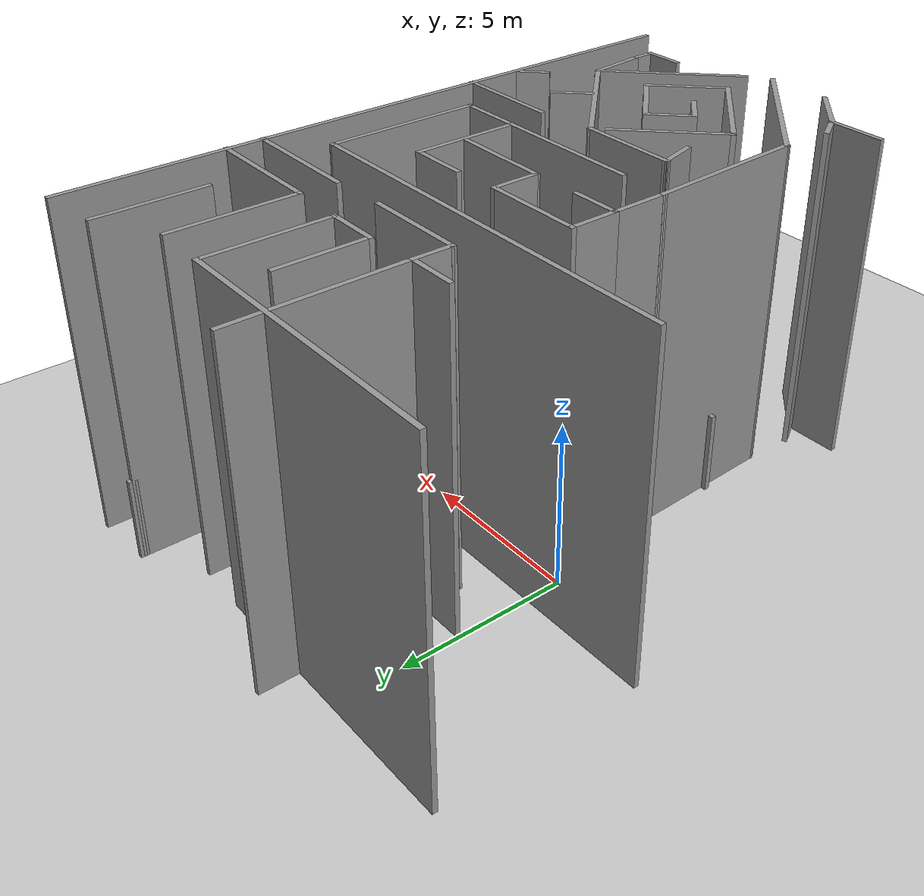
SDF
<sdf version="1.6">
 <world name="default">
  <include><uri>model://sun</uri></include>
  <model name="ground_plane">
   <static>1</static>
   <link name="link">
    <collision name="collision">
     <geometry><plane><normal>0 0 1</normal><size>100 100</size></plane></geometry>
     <surface>
      <contact><collide_bitmask>65535</collide_bitmask></contact>
      <friction><ode><mu>100</mu><mu2>50</mu2></ode></friction>
     </surface>
    </collision>
    <visual name="visual">
     <cast_shadows>0</cast_shadows>
     <geometry><plane><normal>0 0 1</normal><size>100 100</size></plane></geometry>
     <material>
      <script><uri>file://media/materials/scripts/gazebo.material</uri><name>Gazebo/Grey</name></script>
     </material>
    </visual>
   </link>
  </model>
  <model name="maze.world">
   <pose>-0.346394 -1.90508 0 0 -0 0</pose>
   <link name="Wall_130">
    <collision name="Wall_130_Collision">
     <geometry><box><size>1.25 0.15 10</size></box></geometry>
     <pose>0 0 5 0 -0 0</pose>
    </collision>
    <visual name="Wall_130_Visual">
     <pose>0 0 5 0 -0 0</pose>
     <geometry><box><size>1.25 0.15 10</size></box></geometry>
     <material>
      <script><uri>file://media/materials/scripts/gazebo.material</uri><name>Gazebo/Grey</name></script>
      <ambient>1 1 1 1</ambient>
     </material>
     <meta><layer>0</layer></meta>
    </visual>
    <pose>4.4255 -6.39102 0 0 -0 2.35619</pose>
   </link>
   <link name="Wall_131">
    <collision name="Wall_131_Collision">
     <geometry><box><size>1.5 0.15 10</size></box></geometry>
     <pose>0 0 5 0 -0 0</pose>
    </collision>
    <visual name="Wall_131_Visual">
     <pose>0 0 5 0 -0 0</pose>
     <geometry><box><size>1.5 0.15 10</size></box></geometry>
     <material>
      <script><uri>file://media/materials/scripts/gazebo.material</uri><name>Gazebo/Grey</name></script>
      <ambient>1 1 1 1</ambient>
     </material>
     <meta><layer>0</layer></meta>
    </visual>
    <pose>4.514 -5.52501 0 0 -0 0.784874</pose>
   </link>
   <link name="Wall_132">
    <collision name="Wall_132_Collision">
     <geometry><box><size>2.5 0.15 10</size></box></geometry>
     <pose>0 0 5 0 -0 0</pose>
    </collision>
    <visual name="Wall_132_Visual">
     <pose>0 0 5 0 -0 0</pose>
     <geometry><box><size>2.5 0.15 10</size></box></geometry>
     <material>
      <script><uri>file://media/materials/scripts/gazebo.material</uri><name>Gazebo/Grey</name></script>
      <ambient>1 1 1 1</ambient>
     </material>
     <meta><layer>0</layer></meta>
    </visual>
    <pose>5.8225 -5.87901 0 0 -0 -0.785398</pose>
   </link>
   <link name="Wall_133">
    <collision name="Wall_133_Collision">
     <geometry><box><size>2.5 0.15 10</size></box></geometry>
     <pose>0 0 5 0 -0 0</pose>
    </collision>
    <visual name="Wall_133_Visual">
     <pose>0 0 5 0 -0 0</pose>
     <geometry><box><size>2.5 0.15 10</size></box></geometry>
     <material>
      <script><uri>file://media/materials/scripts/gazebo.material</uri><name>Gazebo/Grey</name></script>
      <ambient>1 1 1 1</ambient>
     </material>
     <meta><layer>0</layer></meta>
    </visual>
    <pose>5.8225 -7.54052 0 0 -0 -2.35649</pose>
   </link>
   <link name="Wall_134">
    <collision name="Wall_134_Collision">
     <geometry><box><size>3.75 0.15 10</size></box></geometry>
     <pose>0 0 5 0 -0 0</pose>
    </collision>
    <visual name="Wall_134_Visual">
     <pose>0 0 5 0 -0 0</pose>
     <geometry><box><size>3.75 0.15 10</size></box></geometry>
     <material>
      <script><uri>file://media/materials/scripts/gazebo.material</uri><name>Gazebo/Grey</name></script>
      <ambient>1 1 1 1</ambient>
     </material>
     <meta><layer>0</layer></meta>
    </visual>
    <pose>3.7185 -7.09852 0 0 -0 2.35639</pose>
   </link>
   <link name="Wall_135">
    <collision name="Wall_135_Collision">
     <geometry><box><size>3.5 0.15 10</size></box></geometry>
     <pose>0 0 5 0 -0 0</pose>
    </collision>
    <visual name="Wall_135_Visual">
     <pose>0 0 5 0 -0 0</pose>
     <geometry><box><size>3.5 0.15 10</size></box></geometry>
     <material>
      <script><uri>file://media/materials/scripts/gazebo.material</uri><name>Gazebo/Grey</name></script>
      <ambient>1 1 1 1</ambient>
     </material>
     <meta><layer>0</layer></meta>
    </visual>
    <pose>3.63 -4.64152 0 0 -0 0.785398</pose>
   </link>
   <link name="Wall_136">
    <collision name="Wall_136_Collision">
     <geometry><box><size>0.15 0.15 2.5</size></box></geometry>
     <pose>0 0 1.25 0 -0 0</pose>
    </collision>
    <visual name="Wall_136_Visual">
     <pose>0 0 1.25 0 -0 0</pose>
     <geometry><box><size>0.15 0.15 2.5</size></box></geometry>
     <material>
      <script><uri>file://media/materials/scripts/gazebo.material</uri><name>Gazebo/Grey</name></script>
      <ambient>1 1 1 1</ambient>
     </material>
     <meta><layer>0</layer></meta>
    </visual>
    <pose>4.8145 -3.45702 0 0 -0 0</pose>
   </link>
   <link name="Wall_137">
    <collision name="Wall_137_Collision">
     <geometry><box><size>0.15 0.15 2.5</size></box></geometry>
     <pose>0 0 1.25 0 -0 0</pose>
    </collision>
    <visual name="Wall_137_Visual">
     <pose>0 0 1.25 0 -0 0</pose>
     <geometry><box><size>0.15 0.15 2.5</size></box></geometry>
     <material>
      <script><uri>file://media/materials/scripts/gazebo.material</uri><name>Gazebo/Grey</name></script>
      <ambient>1 1 1 1</ambient>
     </material>
     <meta><layer>0</layer></meta>
    </visual>
    <pose>4.8145 -3.45702 0 0 -0 0</pose>
   </link>
   <link name="Wall_138">
    <collision name="Wall_138_Collision">
     <geometry><box><size>0.25 0.15 2.5</size></box></geometry>
     <pose>0 0 1.25 0 -0 0</pose>
    </collision>
    <visual name="Wall_138_Visual">
     <pose>0 0 1.25 0 -0 0</pose>
     <geometry><box><size>0.25 0.15 2.5</size></box></geometry>
     <material>
      <script><uri>file://media/materials/scripts/gazebo.material</uri><name>Gazebo/Grey</name></script>
      <ambient>1 1 1 1</ambient>
     </material>
     <meta><layer>0</layer></meta>
    </visual>
    <pose>4.85001 -3.42161 0 0 -0 0.784014</pose>
   </link>
   <link name="Wall_139">
    <collision name="Wall_139_Collision">
     <geometry><box><size>0.5 0.15 2.5</size></box></geometry>
     <pose>0 0 1.25 0 -0 0</pose>
    </collision>
    <visual name="Wall_139_Visual">
     <pose>0 0 1.25 0 -0 0</pose>
     <geometry><box><size>0.5 0.15 2.5</size></box></geometry>
     <material>
      <script><uri>file://media/materials/scripts/gazebo.material</uri><name>Gazebo/Grey</name></script>
      <ambient>1 1 1 1</ambient>
     </material>
     <meta><layer>0</layer></meta>
    </visual>
    <pose>5.00951 -3.26261 0 0 -0 0.783775</pose>
   </link>
   <link name="Wall_140">
    <collision name="Wall_140_Collision">
     <geometry><box><size>4.75 0.15 10</size></box></geometry>
     <pose>0 0 5 0 -0 0</pose>
    </collision>
    <visual name="Wall_140_Visual">
     <pose>0 0 5 0 -0 0</pose>
     <geometry><box><size>4.75 0.15 10</size></box></geometry>
     <material>
      <script><uri>file://media/materials/scripts/gazebo.material</uri><name>Gazebo/Grey</name></script>
      <ambient>1 1 1 1</ambient>
     </material>
     <meta><layer>0</layer></meta>
    </visual>
    <pose>6.7595 -4.76502 0 0 -0 -0.785398</pose>
   </link>
   <link name="Wall_141">
    <collision name="Wall_141_Collision">
     <geometry><box><size>0.248595 0.15 2.5</size></box></geometry>
     <pose>0 0 1.25 0 -0 0</pose>
    </collision>
    <visual name="Wall_141_Visual">
     <pose>0 0 1.25 0 -0 0</pose>
     <geometry><box><size>0.248595 0.15 2.5</size></box></geometry>
     <material>
      <script><uri>file://media/materials/scripts/gazebo.material</uri><name>Gazebo/Grey</name></script>
      <ambient>1 1 1 1</ambient>
     </material>
     <meta><layer>0</layer></meta>
    </visual>
    <pose>8.4175 -6.42851 0 0 -0 -0.86437</pose>
   </link>
   <link name="Wall_142">
    <collision name="Wall_142_Collision">
     <geometry><box><size>4.51417 0.15 10</size></box></geometry>
     <pose>0 0 5 0 -0 0</pose>
    </collision>
    <visual name="Wall_142_Visual">
     <pose>0 0 5 0 -0 0</pose>
     <geometry><box><size>4.51417 0.15 10</size></box></geometry>
     <material>
      <script><uri>file://media/materials/scripts/gazebo.material</uri><name>Gazebo/Grey</name></script>
      <ambient>1 1 1 1</ambient>
     </material>
     <meta><layer>0</layer></meta>
    </visual>
    <pose>6.9015 -8.00402 0 0 -0 -2.35943</pose>
   </link>
   <link name="Wall_143">
    <collision name="Wall_143_Collision">
     <geometry><box><size>0.573691 0.15 2.5</size></box></geometry>
     <pose>0 0 1.25 0 -0 0</pose>
    </collision>
    <visual name="Wall_143_Visual">
     <pose>0 0 1.25 0 -0 0</pose>
     <geometry><box><size>0.573691 0.15 2.5</size></box></geometry>
     <material>
      <script><uri>file://media/materials/scripts/gazebo.material</uri><name>Gazebo/Grey</name></script>
      <ambient>1 1 1 1</ambient>
     </material>
     <meta><layer>0</layer></meta>
    </visual>
    <pose>5.32664 -9.75215 0 0 -0 -1.69792</pose>
   </link>
   <link name="Wall_147">
    <collision name="Wall_147_Collision">
     <geometry><box><size>5.25 0.15 10</size></box></geometry>
     <pose>0 0 5 0 -0 0</pose>
    </collision>
    <visual name="Wall_147_Visual">
     <pose>0 0 5 0 -0 0</pose>
     <geometry><box><size>5.25 0.15 10</size></box></geometry>
     <material>
      <script><uri>file://media/materials/scripts/gazebo.material</uri><name>Gazebo/Grey</name></script>
      <ambient>1 1 1 1</ambient>
     </material>
     <meta><layer>0</layer></meta>
    </visual>
    <pose>2.8625 -8.14602 0 0 -0 -0.785398</pose>
   </link>
   <link name="Wall_149">
    <collision name="Wall_149_Collision">
     <geometry><box><size>4.87629 0.15 10</size></box></geometry>
     <pose>0 0 5 0 -0 0</pose>
    </collision>
    <visual name="Wall_149_Visual">
     <pose>0 0 5 0 -0 0</pose>
     <geometry><box><size>4.87629 0.15 10</size></box></geometry>
     <material>
      <script><uri>file://media/materials/scripts/gazebo.material</uri><name>Gazebo/Grey</name></script>
      <ambient>1 1 1 1</ambient>
     </material>
     <meta><layer>0</layer></meta>
    </visual>
    <pose>0.967 -3.98151 0 0 -0 1.60995</pose>
   </link>
   <link name="Wall_154">
    <collision name="Wall_154_Collision">
     <geometry><box><size>0.15 0.15 2.5</size></box></geometry>
     <pose>0 0 1.25 0 -0 0</pose>
    </collision>
    <visual name="Wall_154_Visual">
     <pose>0 0 1.25 0 -0 0</pose>
     <geometry><box><size>0.15 0.15 2.5</size></box></geometry>
     <material>
      <script><uri>file://media/materials/scripts/gazebo.material</uri><name>Gazebo/Grey</name></script>
      <ambient>1 1 1 1</ambient>
     </material>
     <meta><layer>0</layer></meta>
    </visual>
    <pose>0.8205 -4.19102 0 0 -0 0</pose>
   </link>
   <link name="Wall_157">
    <collision name="Wall_157_Collision">
     <geometry><box><size>1.75 0.15 10</size></box></geometry>
     <pose>0 0 5 0 -0 0</pose>
    </collision>
    <visual name="Wall_157_Visual">
     <pose>0 0 5 0 -0 0</pose>
     <geometry><box><size>1.75 0.15 10</size></box></geometry>
     <material>
      <script><uri>file://media/materials/scripts/gazebo.material</uri><name>Gazebo/Grey</name></script>
      <ambient>1 1 1 1</ambient>
     </material>
     <meta><layer>0</layer></meta>
    </visual>
    <pose>0.5915 -8.60702 0 0 -0 0</pose>
   </link>
   <link name="Wall_158">
    <collision name="Wall_158_Collision">
     <geometry><box><size>2 0.15 10</size></box></geometry>
     <pose>0 0 5 0 -0 0</pose>
    </collision>
    <visual name="Wall_158_Visual">
     <pose>0 0 5 0 -0 0</pose>
     <geometry><box><size>2 0.15 10</size></box></geometry>
     <material>
      <script><uri>file://media/materials/scripts/gazebo.material</uri><name>Gazebo/Grey</name></script>
      <ambient>1 1 1 1</ambient>
     </material>
     <meta><layer>0</layer></meta>
    </visual>
    <pose>2.046 -9.26102 0 0 -0 -0.785016</pose>
   </link>
   <link name="Wall_160">
    <collision name="Wall_160_Collision">
     <geometry><box><size>1 0.15 10</size></box></geometry>
     <pose>0 0 5 0 -0 0</pose>
    </collision>
    <visual name="Wall_160_Visual">
     <pose>0 0 5 0 -0 0</pose>
     <geometry><box><size>1 0.15 10</size></box></geometry>
     <material>
      <script><uri>file://media/materials/scripts/gazebo.material</uri><name>Gazebo/Grey</name></script>
      <ambient>1 1 1 1</ambient>
     </material>
     <meta><layer>0</layer></meta>
    </visual>
    <pose>1.179 -8.23902 0 0 -0 -1.04713</pose>
   </link>
   <link name="Wall_162">
    <collision name="Wall_162_Collision">
     <geometry><box><size>3.25 0.15 10</size></box></geometry>
     <pose>0 0 5 0 -0 0</pose>
    </collision>
    <visual name="Wall_162_Visual">
     <pose>0 0 5 0 -0 0</pose>
     <geometry><box><size>3.25 0.15 10</size></box></geometry>
     <material>
      <script><uri>file://media/materials/scripts/gazebo.material</uri><name>Gazebo/Grey</name></script>
      <ambient>1 1 1 1</ambient>
     </material>
     <meta><layer>0</layer></meta>
    </visual>
    <pose>8.4565 -2.90002 0 0 -0 0</pose>
   </link>
   <link name="Wall_165">
    <collision name="Wall_165_Collision">
     <geometry><box><size>3 0.15 10</size></box></geometry>
     <pose>0 0 5 0 -0 0</pose>
    </collision>
    <visual name="Wall_165_Visual">
     <pose>0 0 5 0 -0 0</pose>
     <geometry><box><size>3 0.15 10</size></box></geometry>
     <material>
      <script><uri>file://media/materials/scripts/gazebo.material</uri><name>Gazebo/Grey</name></script>
      <ambient>1 1 1 1</ambient>
     </material>
     <meta><layer>0</layer></meta>
    </visual>
    <pose>3.7085 -3.13902 0 0 -0 3.14159</pose>
   </link>
   <link name="Wall_166">
    <collision name="Wall_166_Collision">
     <geometry><box><size>1.25 0.15 10</size></box></geometry>
     <pose>0 0 5 0 -0 0</pose>
    </collision>
    <visual name="Wall_166_Visual">
     <pose>0 0 5 0 -0 0</pose>
     <geometry><box><size>1.25 0.15 10</size></box></geometry>
     <material>
      <script><uri>file://media/materials/scripts/gazebo.material</uri><name>Gazebo/Grey</name></script>
      <ambient>1 1 1 1</ambient>
     </material>
     <meta><layer>0</layer></meta>
    </visual>
    <pose>2.4255 -3.67002 0 0 -0 -1.30949</pose>
   </link>
   <link name="Wall_168">
    <collision name="Wall_168_Collision">
     <geometry><box><size>1.25 0.15 10</size></box></geometry>
     <pose>0 0 5 0 -0 0</pose>
    </collision>
    <visual name="Wall_168_Visual">
     <pose>0 0 5 0 -0 0</pose>
     <geometry><box><size>1.25 0.15 10</size></box></geometry>
     <material>
      <script><uri>file://media/materials/scripts/gazebo.material</uri><name>Gazebo/Grey</name></script>
      <ambient>1 1 1 1</ambient>
     </material>
     <meta><layer>0</layer></meta>
    </visual>
    <pose>7.5155 -4.58502 0 0 -0 0.785398</pose>
   </link>
   <link name="Wall_170">
    <collision name="Wall_170_Collision">
     <geometry><box><size>1 0.15 10</size></box></geometry>
     <pose>0 0 5 0 -0 0</pose>
    </collision>
    <visual name="Wall_170_Visual">
     <pose>0 0 5 0 -0 0</pose>
     <geometry><box><size>1 0.15 10</size></box></geometry>
     <material>
      <script><uri>file://media/materials/scripts/gazebo.material</uri><name>Gazebo/Grey</name></script>
      <ambient>1 1 1 1</ambient>
     </material>
     <meta><layer>0</layer></meta>
    </visual>
    <pose>9.592 -4.87552 0 0 -0 -2.35619</pose>
   </link>
   <link name="Wall_172">
    <collision name="Wall_172_Collision">
     <geometry><box><size>1.93325 0.15 10</size></box></geometry>
     <pose>0 0 5 0 -0 0</pose>
    </collision>
    <visual name="Wall_172_Visual">
     <pose>0 0 5 0 -0 0</pose>
     <geometry><box><size>1.93325 0.15 10</size></box></geometry>
     <material>
      <script><uri>file://media/materials/scripts/gazebo.material</uri><name>Gazebo/Grey</name></script>
      <ambient>1 1 1 1</ambient>
     </material>
     <meta><layer>0</layer></meta>
    </visual>
    <pose>8.5415 -7.35252 0 0 -0 -1.46739</pose>
   </link>
   <link name="Wall_173">
    <collision name="Wall_173_Collision">
     <geometry><box><size>0.75 0.15 10</size></box></geometry>
     <pose>0 0 5 0 -0 0</pose>
    </collision>
    <visual name="Wall_173_Visual">
     <pose>0 0 5 0 -0 0</pose>
     <geometry><box><size>0.75 0.15 10</size></box></geometry>
     <material>
      <script><uri>file://media/materials/scripts/gazebo.material</uri><name>Gazebo/Grey</name></script>
      <ambient>1 1 1 1</ambient>
     </material>
     <meta><layer>0</layer></meta>
    </visual>
    <pose>8.6335 -8.53902 0 0 -0 -1.5708</pose>
   </link>
   <link name="Wall_176">
    <collision name="Wall_176_Collision">
     <geometry><box><size>1.25 0.15 10</size></box></geometry>
     <pose>0 0 5 0 -0 0</pose>
    </collision>
    <visual name="Wall_176_Visual">
     <pose>0 0 5 0 -0 0</pose>
     <geometry><box><size>1.25 0.15 10</size></box></geometry>
     <material>
      <script><uri>file://media/materials/scripts/gazebo.material</uri><name>Gazebo/Grey</name></script>
      <ambient>1 1 1 1</ambient>
     </material>
     <meta><layer>0</layer></meta>
    </visual>
    <pose>8.0835 -8.83902 0 0 -0 0</pose>
   </link>
   <link name="Wall_28">
    <collision name="Wall_28_Collision">
     <geometry><box><size>1.5 0.15 10</size></box></geometry>
     <pose>0 0 5 0 -0 0</pose>
    </collision>
    <visual name="Wall_28_Visual">
     <pose>0 0 5 0 -0 0</pose>
     <geometry><box><size>1.5 0.15 10</size></box></geometry>
     <material>
      <script><uri>file://media/materials/scripts/gazebo.material</uri><name>Gazebo/Grey</name></script>
      <ambient>1 1 1 1</ambient>
     </material>
     <meta><layer>0</layer></meta>
    </visual>
    <pose>1.1795 5.13598 0 0 -0 0</pose>
   </link>
   <link name="Wall_29">
    <collision name="Wall_29_Collision">
     <geometry><box><size>5.01971 0.15 10</size></box></geometry>
     <pose>0 0 5 0 -0 0</pose>
    </collision>
    <visual name="Wall_29_Visual">
     <pose>0 0 5 0 -0 0</pose>
     <geometry><box><size>5.01971 0.15 10</size></box></geometry>
     <material>
      <script><uri>file://media/materials/scripts/gazebo.material</uri><name>Gazebo/Grey</name></script>
      <ambient>1 1 1 1</ambient>
     </material>
     <meta><layer>0</layer></meta>
    </visual>
    <pose>1.8445 7.57098 0 0 -0 1.5749</pose>
   </link>
   <link name="Wall_34">
    <collision name="Wall_34_Collision">
     <geometry><box><size>3.74753 0.15 10</size></box></geometry>
     <pose>0 0 5 0 -0 0</pose>
    </collision>
    <visual name="Wall_34_Visual">
     <pose>0 0 5 0 -0 0</pose>
     <geometry><box><size>3.74753 0.15 10</size></box></geometry>
     <material>
      <script><uri>file://media/materials/scripts/gazebo.material</uri><name>Gazebo/Grey</name></script>
      <ambient>1 1 1 1</ambient>
     </material>
     <meta><layer>0</layer></meta>
    </visual>
    <pose>4.8 7.05499 0 0 -0 -1.57107</pose>
   </link>
   <link name="Wall_36">
    <collision name="Wall_36_Collision">
     <geometry><box><size>8.5 0.15 10</size></box></geometry>
     <pose>0 0 5 0 -0 0</pose>
    </collision>
    <visual name="Wall_36_Visual">
     <pose>0 0 5 0 -0 0</pose>
     <geometry><box><size>8.5 0.15 10</size></box></geometry>
     <material>
      <script><uri>file://media/materials/scripts/gazebo.material</uri><name>Gazebo/Grey</name></script>
      <ambient>1 1 1 1</ambient>
     </material>
     <meta><layer>0</layer></meta>
    </visual>
    <pose>0.625501 8.85398 0 0 -0 3.14159</pose>
   </link>
   <link name="Wall_38">
    <collision name="Wall_38_Collision">
     <geometry><box><size>2.69663 0.15 10</size></box></geometry>
     <pose>0 0 5 0 -0 0</pose>
    </collision>
    <visual name="Wall_38_Visual">
     <pose>0 0 5 0 -0 0</pose>
     <geometry><box><size>2.69663 0.15 10</size></box></geometry>
     <material>
      <script><uri>file://media/materials/scripts/gazebo.material</uri><name>Gazebo/Grey</name></script>
      <ambient>1 1 1 1</ambient>
     </material>
     <meta><layer>0</layer></meta>
    </visual>
    <pose>3.3385 6.52948 0 0 -0 -1.5708</pose>
   </link>
   <link name="Wall_39">
    <collision name="Wall_39_Collision">
     <geometry><box><size>1.61153 0.15 10</size></box></geometry>
     <pose>0 0 5 0 -0 0</pose>
    </collision>
    <visual name="Wall_39_Visual">
     <pose>0 0 5 0 -0 0</pose>
     <geometry><box><size>1.61153 0.15 10</size></box></geometry>
     <material>
      <script><uri>file://media/materials/scripts/gazebo.material</uri><name>Gazebo/Grey</name></script>
      <ambient>1 1 1 1</ambient>
     </material>
     <meta><layer>0</layer></meta>
    </visual>
    <pose>4.069 5.25598 0 0 -0 0</pose>
   </link>
   <link name="Wall_4">
    <collision name="Wall_4_Collision">
     <geometry><box><size>0.15 0.15 2.5</size></box></geometry>
     <pose>0 0 1.25 0 -0 0</pose>
    </collision>
    <visual name="Wall_4_Visual">
     <pose>0 0 1.25 0 -0 0</pose>
     <geometry><box><size>0.15 0.15 2.5</size></box></geometry>
     <material>
      <script><uri>file://media/materials/scripts/gazebo.material</uri><name>Gazebo/Grey</name></script>
      <ambient>1 1 1 1</ambient>
     </material>
     <meta><layer>0</layer></meta>
    </visual>
    <pose>9.9835 -9.94402 0 0 -0 0</pose>
   </link>
   <link name="Wall_41">
    <collision name="Wall_41_Collision">
     <geometry><box><size>3.75 0.15 10</size></box></geometry>
     <pose>0 0 5 0 -0 0</pose>
    </collision>
    <visual name="Wall_41_Visual">
     <pose>0 0 5 0 -0 0</pose>
     <geometry><box><size>3.75 0.15 10</size></box></geometry>
     <material>
      <script><uri>file://media/materials/scripts/gazebo.material</uri><name>Gazebo/Grey</name></script>
      <ambient>1 1 1 1</ambient>
     </material>
     <meta><layer>0</layer></meta>
    </visual>
    <pose>6.4165 7.01698 0 0 -0 -1.5708</pose>
   </link>
   <link name="Wall_43">
    <collision name="Wall_43_Collision">
     <geometry><box><size>3.75 0.15 10</size></box></geometry>
     <pose>0 0 5 0 -0 0</pose>
    </collision>
    <visual name="Wall_43_Visual">
     <pose>0 0 5 0 -0 0</pose>
     <geometry><box><size>3.75 0.15 10</size></box></geometry>
     <material>
      <script><uri>file://media/materials/scripts/gazebo.material</uri><name>Gazebo/Grey</name></script>
      <ambient>1 1 1 1</ambient>
     </material>
     <meta><layer>0</layer></meta>
    </visual>
    <pose>8.2165 5.21698 0 0 -0 0</pose>
   </link>
   <link name="Wall_44">
    <collision name="Wall_44_Collision">
     <geometry><box><size>0.15 0.15 2.5</size></box></geometry>
     <pose>0 0 1.25 0 -0 0</pose>
    </collision>
    <visual name="Wall_44_Visual">
     <pose>0 0 1.25 0 -0 0</pose>
     <geometry><box><size>0.15 0.15 2.5</size></box></geometry>
     <material>
      <script><uri>file://media/materials/scripts/gazebo.material</uri><name>Gazebo/Grey</name></script>
      <ambient>1 1 1 1</ambient>
     </material>
     <meta><layer>0</layer></meta>
    </visual>
    <pose>10.0165 5.21698 0 0 -0 0</pose>
   </link>
   <link name="Wall_47">
    <collision name="Wall_47_Collision">
     <geometry><box><size>3.25 0.15 10</size></box></geometry>
     <pose>0 0 5 0 -0 0</pose>
    </collision>
    <visual name="Wall_47_Visual">
     <pose>0 0 5 0 -0 0</pose>
     <geometry><box><size>3.25 0.15 10</size></box></geometry>
     <material>
      <script><uri>file://media/materials/scripts/gazebo.material</uri><name>Gazebo/Grey</name></script>
      <ambient>1 1 1 1</ambient>
     </material>
     <meta><layer>0</layer></meta>
    </visual>
    <pose>8.2005 8.26798 0 0 -0 1.5708</pose>
   </link>
   <link name="Wall_48">
    <collision name="Wall_48_Collision">
     <geometry><box><size>0.25 0.15 2.5</size></box></geometry>
     <pose>0 0 1.25 0 -0 0</pose>
    </collision>
    <visual name="Wall_48_Visual">
     <pose>0 0 1.25 0 -0 0</pose>
     <geometry><box><size>0.25 0.15 2.5</size></box></geometry>
     <material>
      <script><uri>file://media/materials/scripts/gazebo.material</uri><name>Gazebo/Grey</name></script>
      <ambient>1 1 1 1</ambient>
     </material>
     <meta><layer>0</layer></meta>
    </visual>
    <pose>8.20071 9.86811 0 0 -0 1.56666</pose>
   </link>
   <link name="Wall_5">
    <collision name="Wall_5_Collision">
     <geometry><box><size>20.15 0.15 10</size></box></geometry>
     <pose>0 0 5 0 -0 0</pose>
    </collision>
    <visual name="Wall_5_Visual">
     <pose>0 0 5 0 -0 0</pose>
     <geometry><box><size>20.15 0.15 10</size></box></geometry>
     <material>
      <script><uri>file://media/materials/scripts/gazebo.material</uri><name>Gazebo/Grey</name></script>
      <ambient>1 1 1 1</ambient>
     </material>
     <meta><layer>0</layer></meta>
    </visual>
    <pose>9.9835 0.055984 0 0 -0 1.5708</pose>
   </link>
   <link name="Wall_50">
    <collision name="Wall_50_Collision">
     <geometry><box><size>3.75 0.15 10</size></box></geometry>
     <pose>0 0 5 0 -0 0</pose>
    </collision>
    <visual name="Wall_50_Visual">
     <pose>0 0 5 0 -0 0</pose>
     <geometry><box><size>3.75 0.15 10</size></box></geometry>
     <material>
      <script><uri>file://media/materials/scripts/gazebo.material</uri><name>Gazebo/Grey</name></script>
      <ambient>1 1 1 1</ambient>
     </material>
     <meta><layer>0</layer></meta>
    </visual>
    <pose>8.2035 4.14098 0 0 -0 3.14159</pose>
   </link>
   <link name="Wall_52">
    <collision name="Wall_52_Collision">
     <geometry><box><size>3.04087 0.15 10</size></box></geometry>
     <pose>0 0 5 0 -0 0</pose>
    </collision>
    <visual name="Wall_52_Visual">
     <pose>0 0 5 0 -0 0</pose>
     <geometry><box><size>3.04087 0.15 10</size></box></geometry>
     <material>
      <script><uri>file://media/materials/scripts/gazebo.material</uri><name>Gazebo/Grey</name></script>
      <ambient>1 1 1 1</ambient>
     </material>
     <meta><layer>0</layer></meta>
    </visual>
    <pose>3.28 4.05849 0 0 -0 -3.13986</pose>
   </link>
   <link name="Wall_53">
    <collision name="Wall_53_Collision">
     <geometry><box><size>0.15 0.15 2.5</size></box></geometry>
     <pose>0 0 1.25 0 -0 0</pose>
    </collision>
    <visual name="Wall_53_Visual">
     <pose>0 0 1.25 0 -0 0</pose>
     <geometry><box><size>0.15 0.15 2.5</size></box></geometry>
     <material>
      <script><uri>file://media/materials/scripts/gazebo.material</uri><name>Gazebo/Grey</name></script>
      <ambient>1 1 1 1</ambient>
     </material>
     <meta><layer>0</layer></meta>
    </visual>
    <pose>1.8345 4.05598 0 0 -0 0</pose>
   </link>
   <link name="Wall_54">
    <collision name="Wall_54_Collision">
     <geometry><box><size>1.23115 0.15 10</size></box></geometry>
     <pose>0 0 5 0 -0 0</pose>
    </collision>
    <visual name="Wall_54_Visual">
     <pose>0 0 5 0 -0 0</pose>
     <geometry><box><size>1.23115 0.15 10</size></box></geometry>
     <material>
      <script><uri>file://media/materials/scripts/gazebo.material</uri><name>Gazebo/Grey</name></script>
      <ambient>1 1 1 1</ambient>
     </material>
     <meta><layer>0</layer></meta>
    </visual>
    <pose>1.8445 4.59598 0 0 -0 1.55228</pose>
   </link>
   <link name="Wall_71">
    <collision name="Wall_71_Collision">
     <geometry><box><size>12.25 0.15 10</size></box></geometry>
     <pose>0 0 5 0 -0 0</pose>
    </collision>
    <visual name="Wall_71_Visual">
     <pose>0 0 5 0 -0 0</pose>
     <geometry><box><size>12.25 0.15 10</size></box></geometry>
     <material>
      <script><uri>file://media/materials/scripts/gazebo.material</uri><name>Gazebo/Grey</name></script>
      <ambient>1 1 1 1</ambient>
     </material>
     <meta><layer>0</layer></meta>
    </visual>
    <pose>2.4805 2.88699 0 0 -0 0</pose>
   </link>
   <link name="Wall_72">
    <collision name="Wall_72_Collision">
     <geometry><box><size>4.71104 0.15 10</size></box></geometry>
     <pose>0 0 5 0 -0 0</pose>
    </collision>
    <visual name="Wall_72_Visual">
     <pose>0 0 5 0 -0 0</pose>
     <geometry><box><size>4.71104 0.15 10</size></box></geometry>
     <material>
      <script><uri>file://media/materials/scripts/gazebo.material</uri><name>Gazebo/Grey</name></script>
      <ambient>1 1 1 1</ambient>
     </material>
     <meta><layer>0</layer></meta>
    </visual>
    <pose>8.5405 0.606484 0 0 -0 -1.56641</pose>
   </link>
   <link name="Wall_73">
    <collision name="Wall_73_Collision">
     <geometry><box><size>2 0.15 10</size></box></geometry>
     <pose>0 0 5 0 -0 0</pose>
    </collision>
    <visual name="Wall_73_Visual">
     <pose>0 0 5 0 -0 0</pose>
     <geometry><box><size>2 0.15 10</size></box></geometry>
     <material>
      <script><uri>file://media/materials/scripts/gazebo.material</uri><name>Gazebo/Grey</name></script>
      <ambient>1 1 1 1</ambient>
     </material>
     <meta><layer>0</layer></meta>
    </visual>
    <pose>7.6255 -1.67402 0 0 -0 3.14159</pose>
   </link>
   <link name="Wall_74">
    <collision name="Wall_74_Collision">
     <geometry><box><size>3.25 0.15 10</size></box></geometry>
     <pose>0 0 5 0 -0 0</pose>
    </collision>
    <visual name="Wall_74_Visual">
     <pose>0 0 5 0 -0 0</pose>
     <geometry><box><size>3.25 0.15 10</size></box></geometry>
     <material>
      <script><uri>file://media/materials/scripts/gazebo.material</uri><name>Gazebo/Grey</name></script>
      <ambient>1 1 1 1</ambient>
     </material>
     <meta><layer>0</layer></meta>
    </visual>
    <pose>6.7005 -0.124016 0 0 -0 1.5708</pose>
   </link>
   <link name="Wall_75">
    <collision name="Wall_75_Collision">
     <geometry><box><size>1.75 0.15 10</size></box></geometry>
     <pose>0 0 5 0 -0 0</pose>
    </collision>
    <visual name="Wall_75_Visual">
     <pose>0 0 5 0 -0 0</pose>
     <geometry><box><size>1.75 0.15 10</size></box></geometry>
     <material>
      <script><uri>file://media/materials/scripts/gazebo.material</uri><name>Gazebo/Grey</name></script>
      <ambient>1 1 1 1</ambient>
     </material>
     <meta><layer>0</layer></meta>
    </visual>
    <pose>5.9005 1.42599 0 0 -0 3.14159</pose>
   </link>
   <link name="Wall_78">
    <collision name="Wall_78_Collision">
     <geometry><box><size>3 0.15 10</size></box></geometry>
     <pose>0 0 5 0 -0 0</pose>
    </collision>
    <visual name="Wall_78_Visual">
     <pose>0 0 5 0 -0 0</pose>
     <geometry><box><size>3 0.15 10</size></box></geometry>
     <material>
      <script><uri>file://media/materials/scripts/gazebo.material</uri><name>Gazebo/Grey</name></script>
      <ambient>1 1 1 1</ambient>
     </material>
     <meta><layer>0</layer></meta>
    </visual>
    <pose>5.1495 -0.014516 0 0 -0 3.13072</pose>
   </link>
   <link name="Wall_79">
    <collision name="Wall_79_Collision">
     <geometry><box><size>1.47913 0.15 10</size></box></geometry>
     <pose>0 0 5 0 -0 0</pose>
    </collision>
    <visual name="Wall_79_Visual">
     <pose>0 0 5 0 -0 0</pose>
     <geometry><box><size>1.47913 0.15 10</size></box></geometry>
     <material>
      <script><uri>file://media/materials/scripts/gazebo.material</uri><name>Gazebo/Grey</name></script>
      <ambient>1 1 1 1</ambient>
     </material>
     <meta><layer>0</layer></meta>
    </visual>
    <pose>3.7245 0.665484 0 0 -0 1.5708</pose>
   </link>
   <link name="Wall_81">
    <collision name="Wall_81_Collision">
     <geometry><box><size>4.5 0.15 10</size></box></geometry>
     <pose>0 0 5 0 -0 0</pose>
    </collision>
    <visual name="Wall_81_Visual">
     <pose>0 0 5 0 -0 0</pose>
     <geometry><box><size>4.5 0.15 10</size></box></geometry>
     <material>
      <script><uri>file://media/materials/scripts/gazebo.material</uri><name>Gazebo/Grey</name></script>
      <ambient>1 1 1 1</ambient>
     </material>
     <meta><layer>0</layer></meta>
    </visual>
    <pose>4.5255 -1.67402 0 0 -0 3.14159</pose>
   </link>
   <link name="Wall_84">
    <collision name="Wall_84_Collision">
     <geometry><box><size>3 0.15 10</size></box></geometry>
     <pose>0 0 5 0 -0 0</pose>
    </collision>
    <visual name="Wall_84_Visual">
     <pose>0 0 5 0 -0 0</pose>
     <geometry><box><size>3 0.15 10</size></box></geometry>
     <material>
      <script><uri>file://media/materials/scripts/gazebo.material</uri><name>Gazebo/Grey</name></script>
      <ambient>1 1 1 1</ambient>
     </material>
     <meta><layer>0</layer></meta>
    </visual>
    <pose>2.2995 1.32998 0 0 -0 3.14159</pose>
   </link>
   <link name="Wall_85">
    <collision name="Wall_85_Collision">
     <geometry><box><size>1.5 0.15 10</size></box></geometry>
     <pose>0 0 5 0 -0 0</pose>
    </collision>
    <visual name="Wall_85_Visual">
     <pose>0 0 5 0 -0 0</pose>
     <geometry><box><size>1.5 0.15 10</size></box></geometry>
     <material>
      <script><uri>file://media/materials/scripts/gazebo.material</uri><name>Gazebo/Grey</name></script>
      <ambient>1 1 1 1</ambient>
     </material>
     <meta><layer>0</layer></meta>
    </visual>
    <pose>0.8745 0.654984 0 0 -0 -1.5708</pose>
   </link>
   <link name="Wall_86">
    <collision name="Wall_86_Collision">
     <geometry><box><size>1.5 0.15 10</size></box></geometry>
     <pose>0 0 5 0 -0 0</pose>
    </collision>
    <visual name="Wall_86_Visual">
     <pose>0 0 5 0 -0 0</pose>
     <geometry><box><size>1.5 0.15 10</size></box></geometry>
     <material>
      <script><uri>file://media/materials/scripts/gazebo.material</uri><name>Gazebo/Grey</name></script>
      <ambient>1 1 1 1</ambient>
     </material>
     <meta><layer>0</layer></meta>
    </visual>
    <pose>1.5495 -0.020016 0 0 -0 0</pose>
   </link>
   <link name="Wall_89">
    <collision name="Wall_89_Collision">
     <geometry><box><size>1.75 0.15 10</size></box></geometry>
     <pose>0 0 5 0 -0 0</pose>
    </collision>
    <visual name="Wall_89_Visual">
     <pose>0 0 5 0 -0 0</pose>
     <geometry><box><size>1.75 0.15 10</size></box></geometry>
     <material>
      <script><uri>file://media/materials/scripts/gazebo.material</uri><name>Gazebo/Grey</name></script>
      <ambient>1 1 1 1</ambient>
     </material>
     <meta><layer>0</layer></meta>
    </visual>
    <pose>0.8745 -0.820015 0 0 -0 -1.5708</pose>
   </link>
   <static>1</static>
  </model>
 </world>
</sdf>
